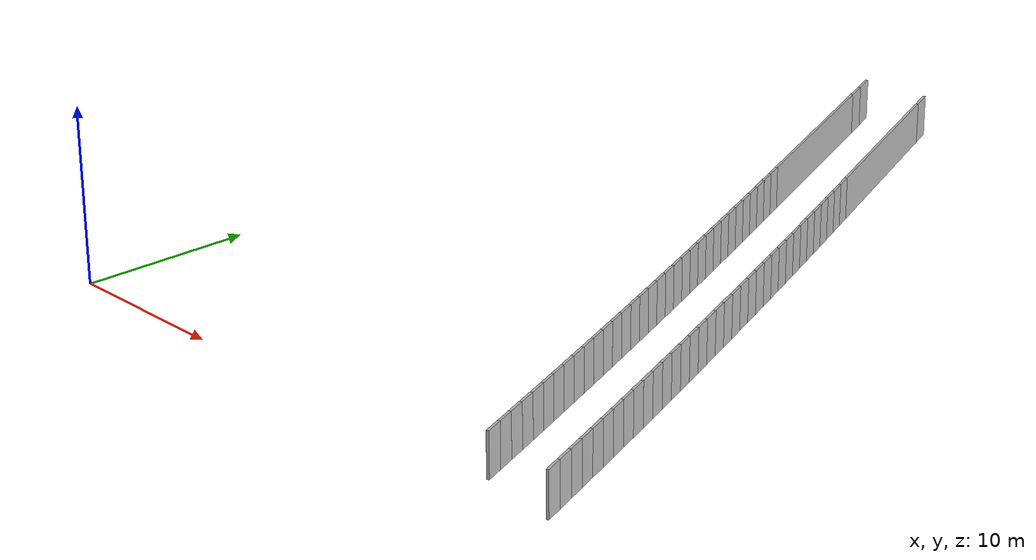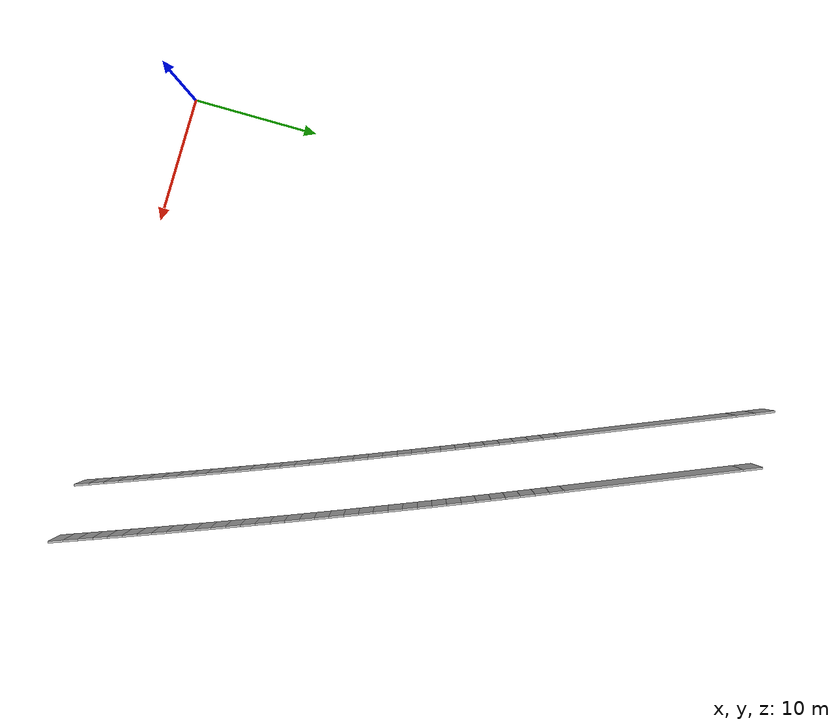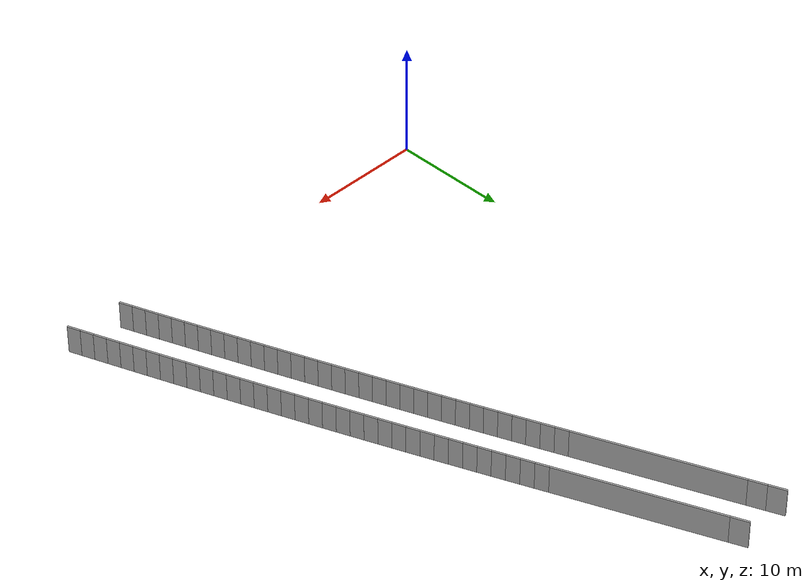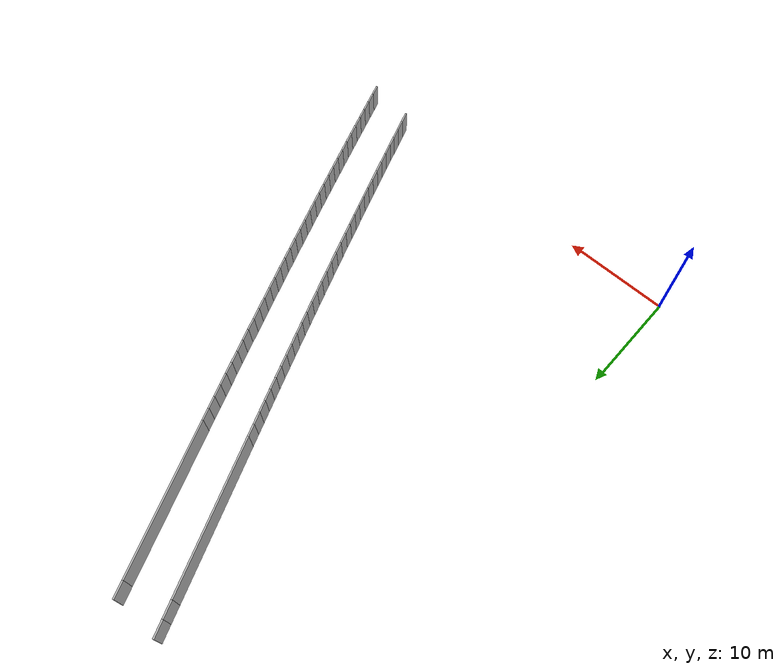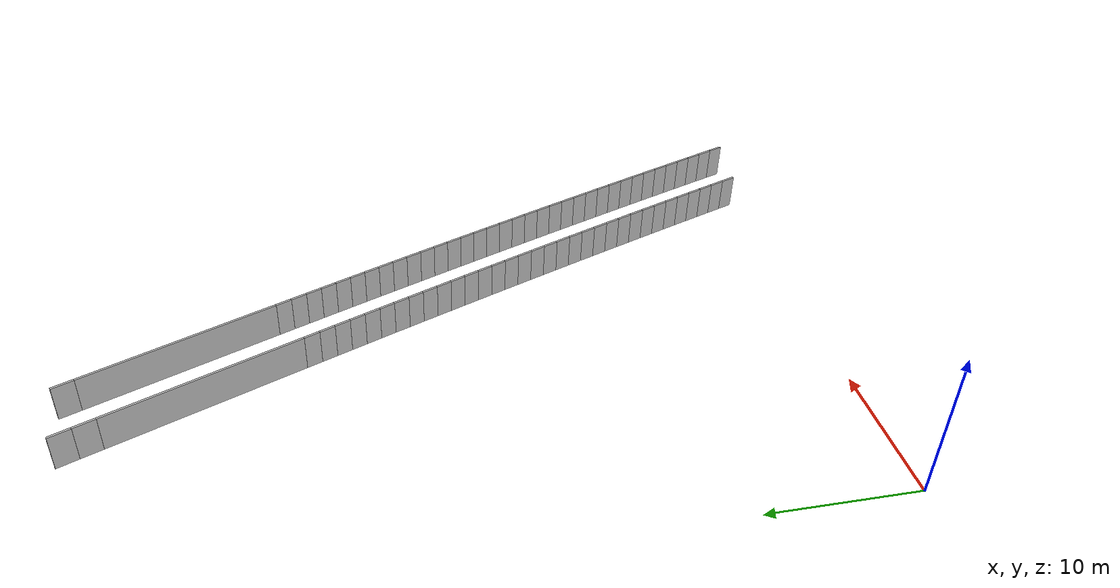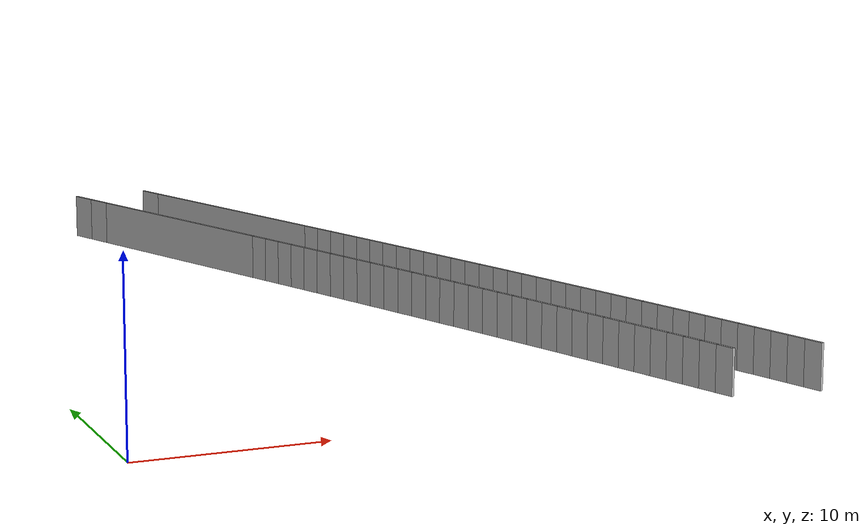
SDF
<?xml version="1.0" ?>
<sdf version="1.6">
  <model name="sps_4434">
    <pose frame="">0 0 0 0 -0 0</pose>
    <static>1</static>
    <self_collide>0</self_collide>
    <allow_auto_disable>0</allow_auto_disable>
    <link name="Wall73">
      <kinematic>0</kinematic>
      <gravity>1</gravity>
      <self_collide>0</self_collide>
      <collision name="collision">
        <geometry>
          <box>
            <size>13.7172 0.15 2.5</size>
          </box>
        </geometry>
        <pose frame="">0 0 0 0 -0 0</pose>
      </collision>
      <visual name="visual">
        <geometry>
          <box>
            <size>13.7172 0.15 2.5</size>
          </box>
        </geometry>
        <pose frame="">0 0 0 0 -0 0</pose>
        <cast_shadows>1</cast_shadows>
        <transparency>0.0</transparency>
      </visual>
      <pose frame="">19.0528 42.5171 1.25 0 0 -1.17752</pose>
    </link>
    <link name="Wall477">
      <kinematic>0</kinematic>
      <gravity>1</gravity>
      <self_collide>0</self_collide>
      <collision name="collision">
        <geometry>
          <box>
            <size>13.7271 0.15 2.5</size>
          </box>
        </geometry>
        <pose frame="">0 0 0 0 -0 0</pose>
      </collision>
      <visual name="visual">
        <geometry>
          <box>
            <size>13.7271 0.15 2.5</size>
          </box>
        </geometry>
        <pose frame="">0 0 0 0 -0 0</pose>
        <cast_shadows>1</cast_shadows>
        <transparency>0.0</transparency>
      </visual>
      <pose frame="">15.2295 40.9299 1.25 0 -0 1.96413</pose>
    </link>
    <link name="Wall3470">
      <kinematic>0</kinematic>
      <gravity>1</gravity>
      <self_collide>0</self_collide>
      <collision name="collision">
        <geometry>
          <box>
            <size>1.12133 0.15 2.5</size>
          </box>
        </geometry>
        <pose frame="">0 0 0 0 -0 0</pose>
      </collision>
      <visual name="visual">
        <geometry>
          <box>
            <size>1.12133 0.15 2.5</size>
          </box>
        </geometry>
        <pose frame="">0 0 0 0 -0 0</pose>
        <cast_shadows>1</cast_shadows>
        <transparency>0.0</transparency>
      </visual>
      <pose frame="">31.2198 0.685195 1.25 0 -0 1.92679</pose>
    </link>
    <link name="Wall3471">
      <kinematic>0</kinematic>
      <gravity>1</gravity>
      <self_collide>0</self_collide>
      <collision name="collision">
        <geometry>
          <box>
            <size>1.12134 0.15 2.5</size>
          </box>
        </geometry>
        <pose frame="">0 0 0 0 -0 0</pose>
      </collision>
      <visual name="visual">
        <geometry>
          <box>
            <size>1.12134 0.15 2.5</size>
          </box>
        </geometry>
        <pose frame="">0 0 0 0 -0 0</pose>
        <cast_shadows>1</cast_shadows>
        <transparency>0.0</transparency>
      </visual>
      <pose frame="">30.8285 1.73601 1.25 0 -0 1.92789</pose>
    </link>
    <link name="Wall3472">
      <kinematic>0</kinematic>
      <gravity>1</gravity>
      <self_collide>0</self_collide>
      <collision name="collision">
        <geometry>
          <box>
            <size>1.12145 0.15 2.5</size>
          </box>
        </geometry>
        <pose frame="">0 0 0 0 -0 0</pose>
      </collision>
      <visual name="visual">
        <geometry>
          <box>
            <size>1.12145 0.15 2.5</size>
          </box>
        </geometry>
        <pose frame="">0 0 0 0 -0 0</pose>
        <cast_shadows>1</cast_shadows>
        <transparency>0.0</transparency>
      </visual>
      <pose frame="">30.4358 2.78639 1.25 0 -0 1.92925</pose>
    </link>
    <link name="Wall3473">
      <kinematic>0</kinematic>
      <gravity>1</gravity>
      <self_collide>0</self_collide>
      <collision name="collision">
        <geometry>
          <box>
            <size>1.12134 0.15 2.5</size>
          </box>
        </geometry>
        <pose frame="">0 0 0 0 -0 0</pose>
      </collision>
      <visual name="visual">
        <geometry>
          <box>
            <size>1.12134 0.15 2.5</size>
          </box>
        </geometry>
        <pose frame="">0 0 0 0 -0 0</pose>
        <cast_shadows>1</cast_shadows>
        <transparency>0.0</transparency>
      </visual>
      <pose frame="">30.0417 3.83629 1.25 0 -0 1.93039</pose>
    </link>
    <link name="Wall3474">
      <kinematic>0</kinematic>
      <gravity>1</gravity>
      <self_collide>0</self_collide>
      <collision name="collision">
        <geometry>
          <box>
            <size>1.12144 0.15 2.5</size>
          </box>
        </geometry>
        <pose frame="">0 0 0 0 -0 0</pose>
      </collision>
      <visual name="visual">
        <geometry>
          <box>
            <size>1.12144 0.15 2.5</size>
          </box>
        </geometry>
        <pose frame="">0 0 0 0 -0 0</pose>
        <cast_shadows>1</cast_shadows>
        <transparency>0.0</transparency>
      </visual>
      <pose frame="">29.6464 4.8857 1.25 0 -0 1.93169</pose>
    </link>
    <link name="Wall3475">
      <kinematic>0</kinematic>
      <gravity>1</gravity>
      <self_collide>0</self_collide>
      <collision name="collision">
        <geometry>
          <box>
            <size>1.1213 0.15 2.5</size>
          </box>
        </geometry>
        <pose frame="">0 0 0 0 -0 0</pose>
      </collision>
      <visual name="visual">
        <geometry>
          <box>
            <size>1.1213 0.15 2.5</size>
          </box>
        </geometry>
        <pose frame="">0 0 0 0 -0 0</pose>
        <cast_shadows>1</cast_shadows>
        <transparency>0.0</transparency>
      </visual>
      <pose frame="">29.2498 5.93458 1.25 0 -0 1.93291</pose>
    </link>
    <link name="Wall3476">
      <kinematic>0</kinematic>
      <gravity>1</gravity>
      <self_collide>0</self_collide>
      <collision name="collision">
        <geometry>
          <box>
            <size>1.1213 0.15 2.5</size>
          </box>
        </geometry>
        <pose frame="">0 0 0 0 -0 0</pose>
      </collision>
      <visual name="visual">
        <geometry>
          <box>
            <size>1.1213 0.15 2.5</size>
          </box>
        </geometry>
        <pose frame="">0 0 0 0 -0 0</pose>
        <cast_shadows>1</cast_shadows>
        <transparency>0.0</transparency>
      </visual>
      <pose frame="">28.8521 6.98299 1.25 0 -0 1.93384</pose>
    </link>
    <link name="Wall3477">
      <kinematic>0</kinematic>
      <gravity>1</gravity>
      <self_collide>0</self_collide>
      <collision name="collision">
        <geometry>
          <box>
            <size>1.12147 0.15 2.5</size>
          </box>
        </geometry>
        <pose frame="">0 0 0 0 -0 0</pose>
      </collision>
      <visual name="visual">
        <geometry>
          <box>
            <size>1.12147 0.15 2.5</size>
          </box>
        </geometry>
        <pose frame="">0 0 0 0 -0 0</pose>
        <cast_shadows>1</cast_shadows>
        <transparency>0.0</transparency>
      </visual>
      <pose frame="">28.4531 8.03099 1.25 0 -0 1.93529</pose>
    </link>
    <link name="Wall3478">
      <kinematic>0</kinematic>
      <gravity>1</gravity>
      <self_collide>0</self_collide>
      <collision name="collision">
        <geometry>
          <box>
            <size>1.1215 0.15 2.5</size>
          </box>
        </geometry>
        <pose frame="">0 0 0 0 -0 0</pose>
      </collision>
      <visual name="visual">
        <geometry>
          <box>
            <size>1.1215 0.15 2.5</size>
          </box>
        </geometry>
        <pose frame="">0 0 0 0 -0 0</pose>
        <cast_shadows>1</cast_shadows>
        <transparency>0.0</transparency>
      </visual>
      <pose frame="">28.0528 9.0786 1.25 0 -0 1.93627</pose>
    </link>
    <link name="Wall3479">
      <kinematic>0</kinematic>
      <gravity>1</gravity>
      <self_collide>0</self_collide>
      <collision name="collision">
        <geometry>
          <box>
            <size>1.12141 0.15 2.5</size>
          </box>
        </geometry>
        <pose frame="">0 0 0 0 -0 0</pose>
      </collision>
      <visual name="visual">
        <geometry>
          <box>
            <size>1.12141 0.15 2.5</size>
          </box>
        </geometry>
        <pose frame="">0 0 0 0 -0 0</pose>
        <cast_shadows>1</cast_shadows>
        <transparency>0.0</transparency>
      </visual>
      <pose frame="">27.6514 10.1257 1.25 0 -0 1.93759</pose>
    </link>
    <link name="Wall3480">
      <kinematic>0</kinematic>
      <gravity>1</gravity>
      <self_collide>0</self_collide>
      <collision name="collision">
        <geometry>
          <box>
            <size>1.12138 0.15 2.5</size>
          </box>
        </geometry>
        <pose frame="">0 0 0 0 -0 0</pose>
      </collision>
      <visual name="visual">
        <geometry>
          <box>
            <size>1.12138 0.15 2.5</size>
          </box>
        </geometry>
        <pose frame="">0 0 0 0 -0 0</pose>
        <cast_shadows>1</cast_shadows>
        <transparency>0.0</transparency>
      </visual>
      <pose frame="">27.2487 11.1723 1.25 0 -0 1.93859</pose>
    </link>
    <link name="Wall3481">
      <kinematic>0</kinematic>
      <gravity>1</gravity>
      <self_collide>0</self_collide>
      <collision name="collision">
        <geometry>
          <box>
            <size>1.12149 0.15 2.5</size>
          </box>
        </geometry>
        <pose frame="">0 0 0 0 -0 0</pose>
      </collision>
      <visual name="visual">
        <geometry>
          <box>
            <size>1.12149 0.15 2.5</size>
          </box>
        </geometry>
        <pose frame="">0 0 0 0 -0 0</pose>
        <cast_shadows>1</cast_shadows>
        <transparency>0.0</transparency>
      </visual>
      <pose frame="">26.8448 12.2185 1.25 0 -0 1.93989</pose>
    </link>
    <link name="Wall3482">
      <kinematic>0</kinematic>
      <gravity>1</gravity>
      <self_collide>0</self_collide>
      <collision name="collision">
        <geometry>
          <box>
            <size>1.12125 0.15 2.5</size>
          </box>
        </geometry>
        <pose frame="">0 0 0 0 -0 0</pose>
      </collision>
      <visual name="visual">
        <geometry>
          <box>
            <size>1.12125 0.15 2.5</size>
          </box>
        </geometry>
        <pose frame="">0 0 0 0 -0 0</pose>
        <cast_shadows>1</cast_shadows>
        <transparency>0.0</transparency>
      </visual>
      <pose frame="">26.4396 13.2641 1.25 0 -0 1.94114</pose>
    </link>
    <link name="Wall3483">
      <kinematic>0</kinematic>
      <gravity>1</gravity>
      <self_collide>0</self_collide>
      <collision name="collision">
        <geometry>
          <box>
            <size>1.12125 0.15 2.5</size>
          </box>
        </geometry>
        <pose frame="">0 0 0 0 -0 0</pose>
      </collision>
      <visual name="visual">
        <geometry>
          <box>
            <size>1.12125 0.15 2.5</size>
          </box>
        </geometry>
        <pose frame="">0 0 0 0 -0 0</pose>
        <cast_shadows>1</cast_shadows>
        <transparency>0.0</transparency>
      </visual>
      <pose frame="">26.033 14.309 1.25 0 -0 1.94266</pose>
    </link>
    <link name="Wall3484">
      <kinematic>0</kinematic>
      <gravity>1</gravity>
      <self_collide>0</self_collide>
      <collision name="collision">
        <geometry>
          <box>
            <size>1.12131 0.15 2.5</size>
          </box>
        </geometry>
        <pose frame="">0 0 0 0 -0 0</pose>
      </collision>
      <visual name="visual">
        <geometry>
          <box>
            <size>1.12131 0.15 2.5</size>
          </box>
        </geometry>
        <pose frame="">0 0 0 0 -0 0</pose>
        <cast_shadows>1</cast_shadows>
        <transparency>0.0</transparency>
      </visual>
      <pose frame="">25.6251 15.3535 1.25 0 -0 1.9434</pose>
    </link>
    <link name="Wall3485">
      <kinematic>0</kinematic>
      <gravity>1</gravity>
      <self_collide>0</self_collide>
      <collision name="collision">
        <geometry>
          <box>
            <size>1.12131 0.15 2.5</size>
          </box>
        </geometry>
        <pose frame="">0 0 0 0 -0 0</pose>
      </collision>
      <visual name="visual">
        <geometry>
          <box>
            <size>1.12131 0.15 2.5</size>
          </box>
        </geometry>
        <pose frame="">0 0 0 0 -0 0</pose>
        <cast_shadows>1</cast_shadows>
        <transparency>0.0</transparency>
      </visual>
      <pose frame="">25.2162 16.3976 1.25 0 -0 1.94474</pose>
    </link>
    <link name="Wall3486">
      <kinematic>0</kinematic>
      <gravity>1</gravity>
      <self_collide>0</self_collide>
      <collision name="collision">
        <geometry>
          <box>
            <size>1.12134 0.15 2.5</size>
          </box>
        </geometry>
        <pose frame="">0 0 0 0 -0 0</pose>
      </collision>
      <visual name="visual">
        <geometry>
          <box>
            <size>1.12134 0.15 2.5</size>
          </box>
        </geometry>
        <pose frame="">0 0 0 0 -0 0</pose>
        <cast_shadows>1</cast_shadows>
        <transparency>0.0</transparency>
      </visual>
      <pose frame="">24.8061 17.4412 1.25 0 -0 1.94584</pose>
    </link>
    <link name="Wall3487">
      <kinematic>0</kinematic>
      <gravity>1</gravity>
      <self_collide>0</self_collide>
      <collision name="collision">
        <geometry>
          <box>
            <size>1.12122 0.15 2.5</size>
          </box>
        </geometry>
        <pose frame="">0 0 0 0 -0 0</pose>
      </collision>
      <visual name="visual">
        <geometry>
          <box>
            <size>1.12122 0.15 2.5</size>
          </box>
        </geometry>
        <pose frame="">0 0 0 0 -0 0</pose>
        <cast_shadows>1</cast_shadows>
        <transparency>0.0</transparency>
      </visual>
      <pose frame="">24.3947 18.4843 1.25 0 -0 1.94706</pose>
    </link>
    <link name="Wall3488">
      <kinematic>0</kinematic>
      <gravity>1</gravity>
      <self_collide>0</self_collide>
      <collision name="collision">
        <geometry>
          <box>
            <size>1.12159 0.15 2.5</size>
          </box>
        </geometry>
        <pose frame="">0 0 0 0 -0 0</pose>
      </collision>
      <visual name="visual">
        <geometry>
          <box>
            <size>1.12159 0.15 2.5</size>
          </box>
        </geometry>
        <pose frame="">0 0 0 0 -0 0</pose>
        <cast_shadows>1</cast_shadows>
        <transparency>0.0</transparency>
      </visual>
      <pose frame="">23.982 19.527 1.25 0 -0 1.94833</pose>
    </link>
    <link name="Wall3489">
      <kinematic>0</kinematic>
      <gravity>1</gravity>
      <self_collide>0</self_collide>
      <collision name="collision">
        <geometry>
          <box>
            <size>1.12136 0.15 2.5</size>
          </box>
        </geometry>
        <pose frame="">0 0 0 0 -0 0</pose>
      </collision>
      <visual name="visual">
        <geometry>
          <box>
            <size>1.12136 0.15 2.5</size>
          </box>
        </geometry>
        <pose frame="">0 0 0 0 -0 0</pose>
        <cast_shadows>1</cast_shadows>
        <transparency>0.0</transparency>
      </visual>
      <pose frame="">23.568 20.5693 1.25 0 -0 1.94929</pose>
    </link>
    <link name="Wall3490">
      <kinematic>0</kinematic>
      <gravity>1</gravity>
      <self_collide>0</self_collide>
      <collision name="collision">
        <geometry>
          <box>
            <size>1.12134 0.15 2.5</size>
          </box>
        </geometry>
        <pose frame="">0 0 0 0 -0 0</pose>
      </collision>
      <visual name="visual">
        <geometry>
          <box>
            <size>1.12134 0.15 2.5</size>
          </box>
        </geometry>
        <pose frame="">0 0 0 0 -0 0</pose>
        <cast_shadows>1</cast_shadows>
        <transparency>0.0</transparency>
      </visual>
      <pose frame="">23.1529 21.611 1.25 0 -0 1.95071</pose>
    </link>
    <link name="Wall3491">
      <kinematic>0</kinematic>
      <gravity>1</gravity>
      <self_collide>0</self_collide>
      <collision name="collision">
        <geometry>
          <box>
            <size>1.1216 0.15 2.5</size>
          </box>
        </geometry>
        <pose frame="">0 0 0 0 -0 0</pose>
      </collision>
      <visual name="visual">
        <geometry>
          <box>
            <size>1.1216 0.15 2.5</size>
          </box>
        </geometry>
        <pose frame="">0 0 0 0 -0 0</pose>
        <cast_shadows>1</cast_shadows>
        <transparency>0.0</transparency>
      </visual>
      <pose frame="">22.7365 22.6523 1.25 0 -0 1.95173</pose>
    </link>
    <link name="Wall3492">
      <kinematic>0</kinematic>
      <gravity>1</gravity>
      <self_collide>0</self_collide>
      <collision name="collision">
        <geometry>
          <box>
            <size>1.12129 0.15 2.5</size>
          </box>
        </geometry>
        <pose frame="">0 0 0 0 -0 0</pose>
      </collision>
      <visual name="visual">
        <geometry>
          <box>
            <size>1.12129 0.15 2.5</size>
          </box>
        </geometry>
        <pose frame="">0 0 0 0 -0 0</pose>
        <cast_shadows>1</cast_shadows>
        <transparency>0.0</transparency>
      </visual>
      <pose frame="">22.319 23.6931 1.25 0 -0 1.95295</pose>
    </link>
    <link name="Wall3493">
      <kinematic>0</kinematic>
      <gravity>1</gravity>
      <self_collide>0</self_collide>
      <collision name="collision">
        <geometry>
          <box>
            <size>1.12143 0.15 2.5</size>
          </box>
        </geometry>
        <pose frame="">0 0 0 0 -0 0</pose>
      </collision>
      <visual name="visual">
        <geometry>
          <box>
            <size>1.12143 0.15 2.5</size>
          </box>
        </geometry>
        <pose frame="">0 0 0 0 -0 0</pose>
        <cast_shadows>1</cast_shadows>
        <transparency>0.0</transparency>
      </visual>
      <pose frame="">21.9002 24.7333 1.25 0 -0 1.95413</pose>
    </link>
    <link name="Wall3494">
      <kinematic>0</kinematic>
      <gravity>1</gravity>
      <self_collide>0</self_collide>
      <collision name="collision">
        <geometry>
          <box>
            <size>1.12124 0.15 2.5</size>
          </box>
        </geometry>
        <pose frame="">0 0 0 0 -0 0</pose>
      </collision>
      <visual name="visual">
        <geometry>
          <box>
            <size>1.12124 0.15 2.5</size>
          </box>
        </geometry>
        <pose frame="">0 0 0 0 -0 0</pose>
        <cast_shadows>1</cast_shadows>
        <transparency>0.0</transparency>
      </visual>
      <pose frame="">21.4802 25.773 1.25 0 -0 1.95532</pose>
    </link>
    <link name="Wall3495">
      <kinematic>0</kinematic>
      <gravity>1</gravity>
      <self_collide>0</self_collide>
      <collision name="collision">
        <geometry>
          <box>
            <size>1.12143 0.15 2.5</size>
          </box>
        </geometry>
        <pose frame="">0 0 0 0 -0 0</pose>
      </collision>
      <visual name="visual">
        <geometry>
          <box>
            <size>1.12143 0.15 2.5</size>
          </box>
        </geometry>
        <pose frame="">0 0 0 0 -0 0</pose>
        <cast_shadows>1</cast_shadows>
        <transparency>0.0</transparency>
      </visual>
      <pose frame="">21.0589 26.8122 1.25 0 -0 1.9566</pose>
    </link>
    <link name="Wall3496">
      <kinematic>0</kinematic>
      <gravity>1</gravity>
      <self_collide>0</self_collide>
      <collision name="collision">
        <geometry>
          <box>
            <size>1.12132 0.15 2.5</size>
          </box>
        </geometry>
        <pose frame="">0 0 0 0 -0 0</pose>
      </collision>
      <visual name="visual">
        <geometry>
          <box>
            <size>1.12132 0.15 2.5</size>
          </box>
        </geometry>
        <pose frame="">0 0 0 0 -0 0</pose>
        <cast_shadows>1</cast_shadows>
        <transparency>0.0</transparency>
      </visual>
      <pose frame="">20.6363 27.8509 1.25 0 -0 1.95781</pose>
    </link>
    <link name="Wall3497">
      <kinematic>0</kinematic>
      <gravity>1</gravity>
      <self_collide>0</self_collide>
      <collision name="collision">
        <geometry>
          <box>
            <size>1.12142 0.15 2.5</size>
          </box>
        </geometry>
        <pose frame="">0 0 0 0 -0 0</pose>
      </collision>
      <visual name="visual">
        <geometry>
          <box>
            <size>1.12142 0.15 2.5</size>
          </box>
        </geometry>
        <pose frame="">0 0 0 0 -0 0</pose>
        <cast_shadows>1</cast_shadows>
        <transparency>0.0</transparency>
      </visual>
      <pose frame="">20.2125 28.8891 1.25 0 -0 1.95889</pose>
    </link>
    <link name="Wall3498">
      <kinematic>0</kinematic>
      <gravity>1</gravity>
      <self_collide>0</self_collide>
      <collision name="collision">
        <geometry>
          <box>
            <size>1.12149 0.15 2.5</size>
          </box>
        </geometry>
        <pose frame="">0 0 0 0 -0 0</pose>
      </collision>
      <visual name="visual">
        <geometry>
          <box>
            <size>1.12149 0.15 2.5</size>
          </box>
        </geometry>
        <pose frame="">0 0 0 0 -0 0</pose>
        <cast_shadows>1</cast_shadows>
        <transparency>0.0</transparency>
      </visual>
      <pose frame="">19.7875 29.9269 1.25 0 -0 1.96004</pose>
    </link>
    <link name="Wall3499">
      <kinematic>0</kinematic>
      <gravity>1</gravity>
      <self_collide>0</self_collide>
      <collision name="collision">
        <geometry>
          <box>
            <size>1.12139 0.15 2.5</size>
          </box>
        </geometry>
        <pose frame="">0 0 0 0 -0 0</pose>
      </collision>
      <visual name="visual">
        <geometry>
          <box>
            <size>1.12139 0.15 2.5</size>
          </box>
        </geometry>
        <pose frame="">0 0 0 0 -0 0</pose>
        <cast_shadows>1</cast_shadows>
        <transparency>0.0</transparency>
      </visual>
      <pose frame="">19.3613 30.9642 1.25 0 -0 1.96126</pose>
    </link>
    <link name="Wall3500">
      <kinematic>0</kinematic>
      <gravity>1</gravity>
      <self_collide>0</self_collide>
      <collision name="collision">
        <geometry>
          <box>
            <size>1.12132 0.15 2.5</size>
          </box>
        </geometry>
        <pose frame="">0 0 0 0 -0 0</pose>
      </collision>
      <visual name="visual">
        <geometry>
          <box>
            <size>1.12132 0.15 2.5</size>
          </box>
        </geometry>
        <pose frame="">0 0 0 0 -0 0</pose>
        <cast_shadows>1</cast_shadows>
        <transparency>0.0</transparency>
      </visual>
      <pose frame="">18.9339 32.0009 1.25 0 -0 1.9624</pose>
    </link>
    <link name="Wall3501">
      <kinematic>0</kinematic>
      <gravity>1</gravity>
      <self_collide>0</self_collide>
      <collision name="collision">
        <geometry>
          <box>
            <size>1.12134 0.15 2.5</size>
          </box>
        </geometry>
        <pose frame="">0 0 0 0 -0 0</pose>
      </collision>
      <visual name="visual">
        <geometry>
          <box>
            <size>1.12134 0.15 2.5</size>
          </box>
        </geometry>
        <pose frame="">0 0 0 0 -0 0</pose>
        <cast_shadows>1</cast_shadows>
        <transparency>0.0</transparency>
      </visual>
      <pose frame="">18.5053 33.0371 1.25 0 -0 1.96357</pose>
    </link>
    <link name="Wall3502">
      <kinematic>0</kinematic>
      <gravity>1</gravity>
      <self_collide>0</self_collide>
      <collision name="collision">
        <geometry>
          <box>
            <size>1.12137 0.15 2.5</size>
          </box>
        </geometry>
        <pose frame="">0 0 0 0 -0 0</pose>
      </collision>
      <visual name="visual">
        <geometry>
          <box>
            <size>1.12137 0.15 2.5</size>
          </box>
        </geometry>
        <pose frame="">0 0 0 0 -0 0</pose>
        <cast_shadows>1</cast_shadows>
        <transparency>0.0</transparency>
      </visual>
      <pose frame="">18.0754 34.0728 1.25 0 -0 1.96492</pose>
    </link>
    <link name="Wall6402">
      <kinematic>0</kinematic>
      <gravity>1</gravity>
      <self_collide>0</self_collide>
      <collision name="collision">
        <geometry>
          <box>
            <size>1.12616 0.15 2.5</size>
          </box>
        </geometry>
        <pose frame="">0 0 0 0 -0 0</pose>
      </collision>
      <visual name="visual">
        <geometry>
          <box>
            <size>1.12616 0.15 2.5</size>
          </box>
        </geometry>
        <pose frame="">0 0 0 0 -0 0</pose>
        <cast_shadows>1</cast_shadows>
        <transparency>0.0</transparency>
      </visual>
      <pose frame="">35.8824 0.0160665 1.25 0 -0 1.92462</pose>
    </link>
    <link name="Wall6403">
      <kinematic>0</kinematic>
      <gravity>1</gravity>
      <self_collide>0</self_collide>
      <collision name="collision">
        <geometry>
          <box>
            <size>1.12641 0.15 2.5</size>
          </box>
        </geometry>
        <pose frame="">0 0 0 0 -0 0</pose>
      </collision>
      <visual name="visual">
        <geometry>
          <box>
            <size>1.12641 0.15 2.5</size>
          </box>
        </geometry>
        <pose frame="">0 0 0 0 -0 0</pose>
        <cast_shadows>1</cast_shadows>
        <transparency>0.0</transparency>
      </visual>
      <pose frame="">35.4916 1.07237 1.25 0 -0 1.92569</pose>
    </link>
    <link name="Wall6404">
      <kinematic>0</kinematic>
      <gravity>1</gravity>
      <self_collide>0</self_collide>
      <collision name="collision">
        <geometry>
          <box>
            <size>1.12624 0.15 2.5</size>
          </box>
        </geometry>
        <pose frame="">0 0 0 0 -0 0</pose>
      </collision>
      <visual name="visual">
        <geometry>
          <box>
            <size>1.12624 0.15 2.5</size>
          </box>
        </geometry>
        <pose frame="">0 0 0 0 -0 0</pose>
        <cast_shadows>1</cast_shadows>
        <transparency>0.0</transparency>
      </visual>
      <pose frame="">35.0996 2.12828 1.25 0 -0 1.92685</pose>
    </link>
    <link name="Wall6405">
      <kinematic>0</kinematic>
      <gravity>1</gravity>
      <self_collide>0</self_collide>
      <collision name="collision">
        <geometry>
          <box>
            <size>1.12649 0.15 2.5</size>
          </box>
        </geometry>
        <pose frame="">0 0 0 0 -0 0</pose>
      </collision>
      <visual name="visual">
        <geometry>
          <box>
            <size>1.12649 0.15 2.5</size>
          </box>
        </geometry>
        <pose frame="">0 0 0 0 -0 0</pose>
        <cast_shadows>1</cast_shadows>
        <transparency>0.0</transparency>
      </visual>
      <pose frame="">34.7064 3.18379 1.25 0 -0 1.92792</pose>
    </link>
    <link name="Wall6406">
      <kinematic>0</kinematic>
      <gravity>1</gravity>
      <self_collide>0</self_collide>
      <collision name="collision">
        <geometry>
          <box>
            <size>1.12619 0.15 2.5</size>
          </box>
        </geometry>
        <pose frame="">0 0 0 0 -0 0</pose>
      </collision>
      <visual name="visual">
        <geometry>
          <box>
            <size>1.12619 0.15 2.5</size>
          </box>
        </geometry>
        <pose frame="">0 0 0 0 -0 0</pose>
        <cast_shadows>1</cast_shadows>
        <transparency>0.0</transparency>
      </visual>
      <pose frame="">34.3119 4.23878 1.25 0 -0 1.92935</pose>
    </link>
    <link name="Wall6407">
      <kinematic>0</kinematic>
      <gravity>1</gravity>
      <self_collide>0</self_collide>
      <collision name="collision">
        <geometry>
          <box>
            <size>1.12621 0.15 2.5</size>
          </box>
        </geometry>
        <pose frame="">0 0 0 0 -0 0</pose>
      </collision>
      <visual name="visual">
        <geometry>
          <box>
            <size>1.12621 0.15 2.5</size>
          </box>
        </geometry>
        <pose frame="">0 0 0 0 -0 0</pose>
        <cast_shadows>1</cast_shadows>
        <transparency>0.0</transparency>
      </visual>
      <pose frame="">33.9162 5.29317 1.25 0 -0 1.93033</pose>
    </link>
    <link name="Wall6408">
      <kinematic>0</kinematic>
      <gravity>1</gravity>
      <self_collide>0</self_collide>
      <collision name="collision">
        <geometry>
          <box>
            <size>1.12634 0.15 2.5</size>
          </box>
        </geometry>
        <pose frame="">0 0 0 0 -0 0</pose>
      </collision>
      <visual name="visual">
        <geometry>
          <box>
            <size>1.12634 0.15 2.5</size>
          </box>
        </geometry>
        <pose frame="">0 0 0 0 -0 0</pose>
        <cast_shadows>1</cast_shadows>
        <transparency>0.0</transparency>
      </visual>
      <pose frame="">33.5192 6.34718 1.25 0 -0 1.93156</pose>
    </link>
    <link name="Wall6409">
      <kinematic>0</kinematic>
      <gravity>1</gravity>
      <self_collide>0</self_collide>
      <collision name="collision">
        <geometry>
          <box>
            <size>1.1262 0.15 2.5</size>
          </box>
        </geometry>
        <pose frame="">0 0 0 0 -0 0</pose>
      </collision>
      <visual name="visual">
        <geometry>
          <box>
            <size>1.1262 0.15 2.5</size>
          </box>
        </geometry>
        <pose frame="">0 0 0 0 -0 0</pose>
        <cast_shadows>1</cast_shadows>
        <transparency>0.0</transparency>
      </visual>
      <pose frame="">33.1211 7.40071 1.25 0 -0 1.93276</pose>
    </link>
    <link name="Wall6410">
      <kinematic>0</kinematic>
      <gravity>1</gravity>
      <self_collide>0</self_collide>
      <collision name="collision">
        <geometry>
          <box>
            <size>1.12647 0.15 2.5</size>
          </box>
        </geometry>
        <pose frame="">0 0 0 0 -0 0</pose>
      </collision>
      <visual name="visual">
        <geometry>
          <box>
            <size>1.12647 0.15 2.5</size>
          </box>
        </geometry>
        <pose frame="">0 0 0 0 -0 0</pose>
        <cast_shadows>1</cast_shadows>
        <transparency>0.0</transparency>
      </visual>
      <pose frame="">32.7215 8.45381 1.25 0 -0 1.93401</pose>
    </link>
    <link name="Wall6411">
      <kinematic>0</kinematic>
      <gravity>1</gravity>
      <self_collide>0</self_collide>
      <collision name="collision">
        <geometry>
          <box>
            <size>1.12631 0.15 2.5</size>
          </box>
        </geometry>
        <pose frame="">0 0 0 0 -0 0</pose>
      </collision>
      <visual name="visual">
        <geometry>
          <box>
            <size>1.12631 0.15 2.5</size>
          </box>
        </geometry>
        <pose frame="">0 0 0 0 -0 0</pose>
        <cast_shadows>1</cast_shadows>
        <transparency>0.0</transparency>
      </visual>
      <pose frame="">32.3208 9.50648 1.25 0 -0 1.93516</pose>
    </link>
    <link name="Wall6412">
      <kinematic>0</kinematic>
      <gravity>1</gravity>
      <self_collide>0</self_collide>
      <collision name="collision">
        <geometry>
          <box>
            <size>1.12643 0.15 2.5</size>
          </box>
        </geometry>
        <pose frame="">0 0 0 0 -0 0</pose>
      </collision>
      <visual name="visual">
        <geometry>
          <box>
            <size>1.12643 0.15 2.5</size>
          </box>
        </geometry>
        <pose frame="">0 0 0 0 -0 0</pose>
        <cast_shadows>1</cast_shadows>
        <transparency>0.0</transparency>
      </visual>
      <pose frame="">31.9188 10.5587 1.25 0 -0 1.93634</pose>
    </link>
    <link name="Wall6413">
      <kinematic>0</kinematic>
      <gravity>1</gravity>
      <self_collide>0</self_collide>
      <collision name="collision">
        <geometry>
          <box>
            <size>1.12617 0.15 2.5</size>
          </box>
        </geometry>
        <pose frame="">0 0 0 0 -0 0</pose>
      </collision>
      <visual name="visual">
        <geometry>
          <box>
            <size>1.12617 0.15 2.5</size>
          </box>
        </geometry>
        <pose frame="">0 0 0 0 -0 0</pose>
        <cast_shadows>1</cast_shadows>
        <transparency>0.0</transparency>
      </visual>
      <pose frame="">31.5154 11.6103 1.25 0 -0 1.93771</pose>
    </link>
    <link name="Wall6414">
      <kinematic>0</kinematic>
      <gravity>1</gravity>
      <self_collide>0</self_collide>
      <collision name="collision">
        <geometry>
          <box>
            <size>1.12635 0.15 2.5</size>
          </box>
        </geometry>
        <pose frame="">0 0 0 0 -0 0</pose>
      </collision>
      <visual name="visual">
        <geometry>
          <box>
            <size>1.12635 0.15 2.5</size>
          </box>
        </geometry>
        <pose frame="">0 0 0 0 -0 0</pose>
        <cast_shadows>1</cast_shadows>
        <transparency>0.0</transparency>
      </visual>
      <pose frame="">31.111 12.6614 1.25 0 -0 1.93857</pose>
    </link>
    <link name="Wall6415">
      <kinematic>0</kinematic>
      <gravity>1</gravity>
      <self_collide>0</self_collide>
      <collision name="collision">
        <geometry>
          <box>
            <size>1.1263 0.15 2.5</size>
          </box>
        </geometry>
        <pose frame="">0 0 0 0 -0 0</pose>
      </collision>
      <visual name="visual">
        <geometry>
          <box>
            <size>1.1263 0.15 2.5</size>
          </box>
        </geometry>
        <pose frame="">0 0 0 0 -0 0</pose>
        <cast_shadows>1</cast_shadows>
        <transparency>0.0</transparency>
      </visual>
      <pose frame="">30.7053 13.7121 1.25 0 -0 1.93998</pose>
    </link>
    <link name="Wall6416">
      <kinematic>0</kinematic>
      <gravity>1</gravity>
      <self_collide>0</self_collide>
      <collision name="collision">
        <geometry>
          <box>
            <size>1.12599 0.15 2.5</size>
          </box>
        </geometry>
        <pose frame="">0 0 0 0 -0 0</pose>
      </collision>
      <visual name="visual">
        <geometry>
          <box>
            <size>1.12599 0.15 2.5</size>
          </box>
        </geometry>
        <pose frame="">0 0 0 0 -0 0</pose>
        <cast_shadows>1</cast_shadows>
        <transparency>0.0</transparency>
      </visual>
      <pose frame="">30.2981 14.7621 1.25 0 -0 1.94137</pose>
    </link>
    <link name="Wall6417">
      <kinematic>0</kinematic>
      <gravity>1</gravity>
      <self_collide>0</self_collide>
      <collision name="collision">
        <geometry>
          <box>
            <size>1.12625 0.15 2.5</size>
          </box>
        </geometry>
        <pose frame="">0 0 0 0 -0 0</pose>
      </collision>
      <visual name="visual">
        <geometry>
          <box>
            <size>1.12625 0.15 2.5</size>
          </box>
        </geometry>
        <pose frame="">0 0 0 0 -0 0</pose>
        <cast_shadows>1</cast_shadows>
        <transparency>0.0</transparency>
      </visual>
      <pose frame="">29.8899 15.8116 1.25 0 -0 1.94227</pose>
    </link>
    <link name="Wall6418">
      <kinematic>0</kinematic>
      <gravity>1</gravity>
      <self_collide>0</self_collide>
      <collision name="collision">
        <geometry>
          <box>
            <size>1.12631 0.15 2.5</size>
          </box>
        </geometry>
        <pose frame="">0 0 0 0 -0 0</pose>
      </collision>
      <visual name="visual">
        <geometry>
          <box>
            <size>1.12631 0.15 2.5</size>
          </box>
        </geometry>
        <pose frame="">0 0 0 0 -0 0</pose>
        <cast_shadows>1</cast_shadows>
        <transparency>0.0</transparency>
      </visual>
      <pose frame="">29.4803 16.8608 1.25 0 -0 1.94358</pose>
    </link>
    <link name="Wall6419">
      <kinematic>0</kinematic>
      <gravity>1</gravity>
      <self_collide>0</self_collide>
      <collision name="collision">
        <geometry>
          <box>
            <size>1.12615 0.15 2.5</size>
          </box>
        </geometry>
        <pose frame="">0 0 0 0 -0 0</pose>
      </collision>
      <visual name="visual">
        <geometry>
          <box>
            <size>1.12615 0.15 2.5</size>
          </box>
        </geometry>
        <pose frame="">0 0 0 0 -0 0</pose>
        <cast_shadows>1</cast_shadows>
        <transparency>0.0</transparency>
      </visual>
      <pose frame="">29.0696 17.9095 1.25 0 -0 1.94457</pose>
    </link>
    <link name="Wall6420">
      <kinematic>0</kinematic>
      <gravity>1</gravity>
      <self_collide>0</self_collide>
      <collision name="collision">
        <geometry>
          <box>
            <size>1.12633 0.15 2.5</size>
          </box>
        </geometry>
        <pose frame="">0 0 0 0 -0 0</pose>
      </collision>
      <visual name="visual">
        <geometry>
          <box>
            <size>1.12633 0.15 2.5</size>
          </box>
        </geometry>
        <pose frame="">0 0 0 0 -0 0</pose>
        <cast_shadows>1</cast_shadows>
        <transparency>0.0</transparency>
      </visual>
      <pose frame="">28.6577 18.9577 1.25 0 -0 1.94585</pose>
    </link>
    <link name="Wall6421">
      <kinematic>0</kinematic>
      <gravity>1</gravity>
      <self_collide>0</self_collide>
      <collision name="collision">
        <geometry>
          <box>
            <size>1.12645 0.15 2.5</size>
          </box>
        </geometry>
        <pose frame="">0 0 0 0 -0 0</pose>
      </collision>
      <visual name="visual">
        <geometry>
          <box>
            <size>1.12645 0.15 2.5</size>
          </box>
        </geometry>
        <pose frame="">0 0 0 0 -0 0</pose>
        <cast_shadows>1</cast_shadows>
        <transparency>0.0</transparency>
      </visual>
      <pose frame="">28.2444 20.0055 1.25 0 -0 1.94715</pose>
    </link>
    <link name="Wall6422">
      <kinematic>0</kinematic>
      <gravity>1</gravity>
      <self_collide>0</self_collide>
      <collision name="collision">
        <geometry>
          <box>
            <size>1.12624 0.15 2.5</size>
          </box>
        </geometry>
        <pose frame="">0 0 0 0 -0 0</pose>
      </collision>
      <visual name="visual">
        <geometry>
          <box>
            <size>1.12624 0.15 2.5</size>
          </box>
        </geometry>
        <pose frame="">0 0 0 0 -0 0</pose>
        <cast_shadows>1</cast_shadows>
        <transparency>0.0</transparency>
      </visual>
      <pose frame="">27.8299 21.0528 1.25 0 -0 1.94815</pose>
    </link>
    <link name="Wall6423">
      <kinematic>0</kinematic>
      <gravity>1</gravity>
      <self_collide>0</self_collide>
      <collision name="collision">
        <geometry>
          <box>
            <size>1.12619 0.15 2.5</size>
          </box>
        </geometry>
        <pose frame="">0 0 0 0 -0 0</pose>
      </collision>
      <visual name="visual">
        <geometry>
          <box>
            <size>1.12619 0.15 2.5</size>
          </box>
        </geometry>
        <pose frame="">0 0 0 0 -0 0</pose>
        <cast_shadows>1</cast_shadows>
        <transparency>0.0</transparency>
      </visual>
      <pose frame="">27.4143 22.0995 1.25 0 -0 1.94951</pose>
    </link>
    <link name="Wall6424">
      <kinematic>0</kinematic>
      <gravity>1</gravity>
      <self_collide>0</self_collide>
      <collision name="collision">
        <geometry>
          <box>
            <size>1.1263 0.15 2.5</size>
          </box>
        </geometry>
        <pose frame="">0 0 0 0 -0 0</pose>
      </collision>
      <visual name="visual">
        <geometry>
          <box>
            <size>1.1263 0.15 2.5</size>
          </box>
        </geometry>
        <pose frame="">0 0 0 0 -0 0</pose>
        <cast_shadows>1</cast_shadows>
        <transparency>0.0</transparency>
      </visual>
      <pose frame="">26.9973 23.1457 1.25 0 -0 1.95064</pose>
    </link>
    <link name="Wall6425">
      <kinematic>0</kinematic>
      <gravity>1</gravity>
      <self_collide>0</self_collide>
      <collision name="collision">
        <geometry>
          <box>
            <size>1.12629 0.15 2.5</size>
          </box>
        </geometry>
        <pose frame="">0 0 0 0 -0 0</pose>
      </collision>
      <visual name="visual">
        <geometry>
          <box>
            <size>1.12629 0.15 2.5</size>
          </box>
        </geometry>
        <pose frame="">0 0 0 0 -0 0</pose>
        <cast_shadows>1</cast_shadows>
        <transparency>0.0</transparency>
      </visual>
      <pose frame="">26.5792 24.1915 1.25 0 -0 1.95163</pose>
    </link>
    <link name="Wall6426">
      <kinematic>0</kinematic>
      <gravity>1</gravity>
      <self_collide>0</self_collide>
      <collision name="collision">
        <geometry>
          <box>
            <size>1.12646 0.15 2.5</size>
          </box>
        </geometry>
        <pose frame="">0 0 0 0 -0 0</pose>
      </collision>
      <visual name="visual">
        <geometry>
          <box>
            <size>1.12646 0.15 2.5</size>
          </box>
        </geometry>
        <pose frame="">0 0 0 0 -0 0</pose>
        <cast_shadows>1</cast_shadows>
        <transparency>0.0</transparency>
      </visual>
      <pose frame="">26.1598 25.2369 1.25 0 -0 1.95303</pose>
    </link>
    <link name="Wall6427">
      <kinematic>0</kinematic>
      <gravity>1</gravity>
      <self_collide>0</self_collide>
      <collision name="collision">
        <geometry>
          <box>
            <size>1.12617 0.15 2.5</size>
          </box>
        </geometry>
        <pose frame="">0 0 0 0 -0 0</pose>
      </collision>
      <visual name="visual">
        <geometry>
          <box>
            <size>1.12617 0.15 2.5</size>
          </box>
        </geometry>
        <pose frame="">0 0 0 0 -0 0</pose>
        <cast_shadows>1</cast_shadows>
        <transparency>0.0</transparency>
      </visual>
      <pose frame="">25.7391 26.2817 1.25 0 -0 1.95413</pose>
    </link>
    <link name="Wall6428">
      <kinematic>0</kinematic>
      <gravity>1</gravity>
      <self_collide>0</self_collide>
      <collision name="collision">
        <geometry>
          <box>
            <size>1.1263 0.15 2.5</size>
          </box>
        </geometry>
        <pose frame="">0 0 0 0 -0 0</pose>
      </collision>
      <visual name="visual">
        <geometry>
          <box>
            <size>1.1263 0.15 2.5</size>
          </box>
        </geometry>
        <pose frame="">0 0 0 0 -0 0</pose>
        <cast_shadows>1</cast_shadows>
        <transparency>0.0</transparency>
      </visual>
      <pose frame="">25.3172 27.3259 1.25 0 -0 1.95543</pose>
    </link>
    <link name="Wall6429">
      <kinematic>0</kinematic>
      <gravity>1</gravity>
      <self_collide>0</self_collide>
      <collision name="collision">
        <geometry>
          <box>
            <size>1.12636 0.15 2.5</size>
          </box>
        </geometry>
        <pose frame="">0 0 0 0 -0 0</pose>
      </collision>
      <visual name="visual">
        <geometry>
          <box>
            <size>1.12636 0.15 2.5</size>
          </box>
        </geometry>
        <pose frame="">0 0 0 0 -0 0</pose>
        <cast_shadows>1</cast_shadows>
        <transparency>0.0</transparency>
      </visual>
      <pose frame="">24.8939 28.3697 1.25 0 -0 1.95658</pose>
    </link>
    <link name="Wall6430">
      <kinematic>0</kinematic>
      <gravity>1</gravity>
      <self_collide>0</self_collide>
      <collision name="collision">
        <geometry>
          <box>
            <size>1.12623 0.15 2.5</size>
          </box>
        </geometry>
        <pose frame="">0 0 0 0 -0 0</pose>
      </collision>
      <visual name="visual">
        <geometry>
          <box>
            <size>1.12623 0.15 2.5</size>
          </box>
        </geometry>
        <pose frame="">0 0 0 0 -0 0</pose>
        <cast_shadows>1</cast_shadows>
        <transparency>0.0</transparency>
      </visual>
      <pose frame="">24.4695 29.413 1.25 0 -0 1.95773</pose>
    </link>
    <link name="Wall6431">
      <kinematic>0</kinematic>
      <gravity>1</gravity>
      <self_collide>0</self_collide>
      <collision name="collision">
        <geometry>
          <box>
            <size>1.12635 0.15 2.5</size>
          </box>
        </geometry>
        <pose frame="">0 0 0 0 -0 0</pose>
      </collision>
      <visual name="visual">
        <geometry>
          <box>
            <size>1.12635 0.15 2.5</size>
          </box>
        </geometry>
        <pose frame="">0 0 0 0 -0 0</pose>
        <cast_shadows>1</cast_shadows>
        <transparency>0.0</transparency>
      </visual>
      <pose frame="">24.0439 30.4558 1.25 0 -0 1.95886</pose>
    </link>
    <link name="Wall6432">
      <kinematic>0</kinematic>
      <gravity>1</gravity>
      <self_collide>0</self_collide>
      <collision name="collision">
        <geometry>
          <box>
            <size>1.12635 0.15 2.5</size>
          </box>
        </geometry>
        <pose frame="">0 0 0 0 -0 0</pose>
      </collision>
      <visual name="visual">
        <geometry>
          <box>
            <size>1.12635 0.15 2.5</size>
          </box>
        </geometry>
        <pose frame="">0 0 0 0 -0 0</pose>
        <cast_shadows>1</cast_shadows>
        <transparency>0.0</transparency>
      </visual>
      <pose frame="">23.6171 31.4981 1.25 0 -0 1.96015</pose>
    </link>
    <link name="Wall6433">
      <kinematic>0</kinematic>
      <gravity>1</gravity>
      <self_collide>0</self_collide>
      <collision name="collision">
        <geometry>
          <box>
            <size>1.12639 0.15 2.5</size>
          </box>
        </geometry>
        <pose frame="">0 0 0 0 -0 0</pose>
      </collision>
      <visual name="visual">
        <geometry>
          <box>
            <size>1.12639 0.15 2.5</size>
          </box>
        </geometry>
        <pose frame="">0 0 0 0 -0 0</pose>
        <cast_shadows>1</cast_shadows>
        <transparency>0.0</transparency>
      </visual>
      <pose frame="">23.1889 32.5399 1.25 0 -0 1.96137</pose>
    </link>
    <link name="Wall6434">
      <kinematic>0</kinematic>
      <gravity>1</gravity>
      <self_collide>0</self_collide>
      <collision name="collision">
        <geometry>
          <box>
            <size>1.12625 0.15 2.5</size>
          </box>
        </geometry>
        <pose frame="">0 0 0 0 -0 0</pose>
      </collision>
      <visual name="visual">
        <geometry>
          <box>
            <size>1.12625 0.15 2.5</size>
          </box>
        </geometry>
        <pose frame="">0 0 0 0 -0 0</pose>
        <cast_shadows>1</cast_shadows>
        <transparency>0.0</transparency>
      </visual>
      <pose frame="">22.7595 33.5812 1.25 0 -0 1.96235</pose>
    </link>
    <link name="Wall6435">
      <kinematic>0</kinematic>
      <gravity>1</gravity>
      <self_collide>0</self_collide>
      <collision name="collision">
        <geometry>
          <box>
            <size>1.1264 0.15 2.5</size>
          </box>
        </geometry>
        <pose frame="">0 0 0 0 -0 0</pose>
      </collision>
      <visual name="visual">
        <geometry>
          <box>
            <size>1.1264 0.15 2.5</size>
          </box>
        </geometry>
        <pose frame="">0 0 0 0 -0 0</pose>
        <cast_shadows>1</cast_shadows>
        <transparency>0.0</transparency>
      </visual>
      <pose frame="">22.329 34.622 1.25 0 -0 1.96365</pose>
    </link>
    <link name="Wall6436">
      <kinematic>0</kinematic>
      <gravity>1</gravity>
      <self_collide>0</self_collide>
      <collision name="collision">
        <geometry>
          <box>
            <size>1.12611 0.15 2.5</size>
          </box>
        </geometry>
        <pose frame="">0 0 0 0 -0 0</pose>
      </collision>
      <visual name="visual">
        <geometry>
          <box>
            <size>1.12611 0.15 2.5</size>
          </box>
        </geometry>
        <pose frame="">0 0 0 0 -0 0</pose>
        <cast_shadows>1</cast_shadows>
        <transparency>0.0</transparency>
      </visual>
      <pose frame="">21.8972 35.6622 1.25 0 -0 1.96487</pose>
    </link>
    <link name="Wall10170">
      <kinematic>0</kinematic>
      <gravity>1</gravity>
      <self_collide>0</self_collide>
      <collision name="collision">
        <geometry>
          <box>
            <size>1.49624 0.15 2.5</size>
          </box>
        </geometry>
        <pose frame="">0 0 0 0 -0 0</pose>
      </collision>
      <visual name="visual">
        <geometry>
          <box>
            <size>1.49624 0.15 2.5</size>
          </box>
        </geometry>
        <pose frame="">0 0 0 0 -0 0</pose>
        <cast_shadows>1</cast_shadows>
        <transparency>0.0</transparency>
      </visual>
      <pose frame="">12.3122 47.9603 1.25 0 -0 1.96406</pose>
    </link>
    <link name="Wall10171">
      <kinematic>0</kinematic>
      <gravity>1</gravity>
      <self_collide>0</self_collide>
      <collision name="collision">
        <geometry>
          <box>
            <size>1.49641 0.15 2.5</size>
          </box>
        </geometry>
        <pose frame="">0 0 0 0 -0 0</pose>
      </collision>
      <visual name="visual">
        <geometry>
          <box>
            <size>1.49641 0.15 2.5</size>
          </box>
        </geometry>
        <pose frame="">0 0 0 0 -0 0</pose>
        <cast_shadows>1</cast_shadows>
        <transparency>0.0</transparency>
      </visual>
      <pose frame="">11.7378 49.342 1.25 0 -0 1.96551</pose>
    </link>
    <link name="Wall10767">
      <kinematic>0</kinematic>
      <gravity>1</gravity>
      <self_collide>0</self_collide>
      <collision name="collision">
        <geometry>
          <box>
            <size>1.50309 0.15 2.5</size>
          </box>
        </geometry>
        <pose frame="">0 0 0 0 -0 0</pose>
      </collision>
      <visual name="visual">
        <geometry>
          <box>
            <size>1.50309 0.15 2.5</size>
          </box>
        </geometry>
        <pose frame="">0 0 0 0 -0 0</pose>
        <cast_shadows>1</cast_shadows>
        <transparency>0.0</transparency>
      </visual>
      <pose frame="">16.1366 49.5463 1.25 0 -0 1.96393</pose>
    </link>
  </model>
</sdf>
